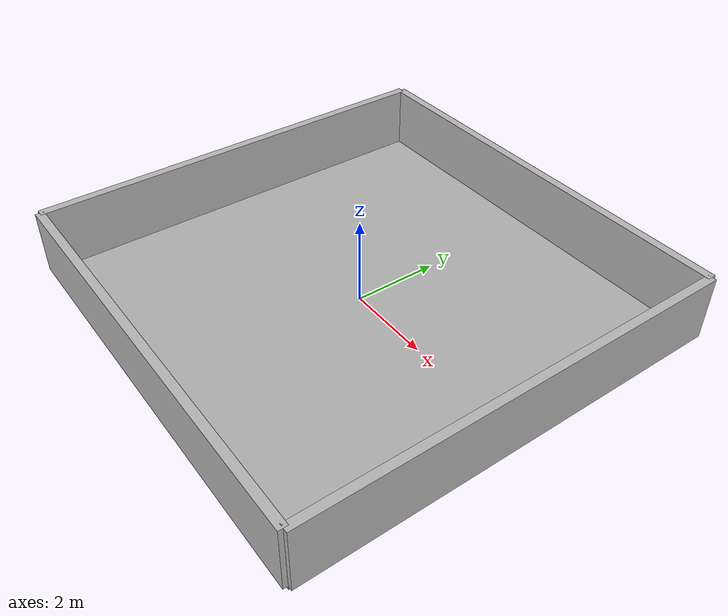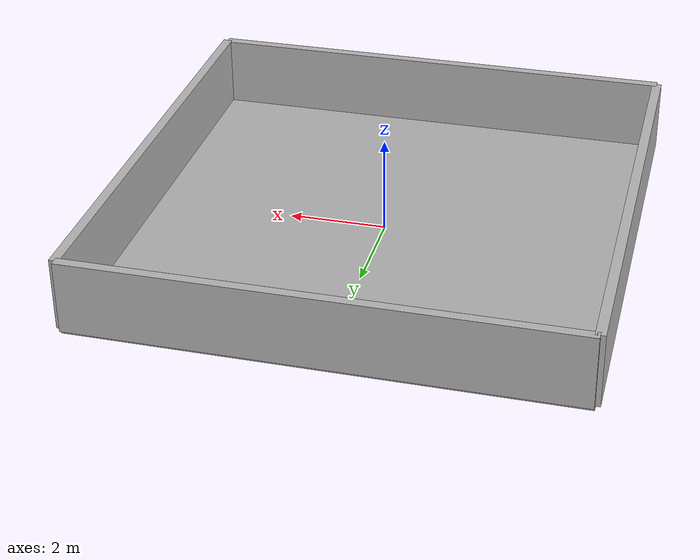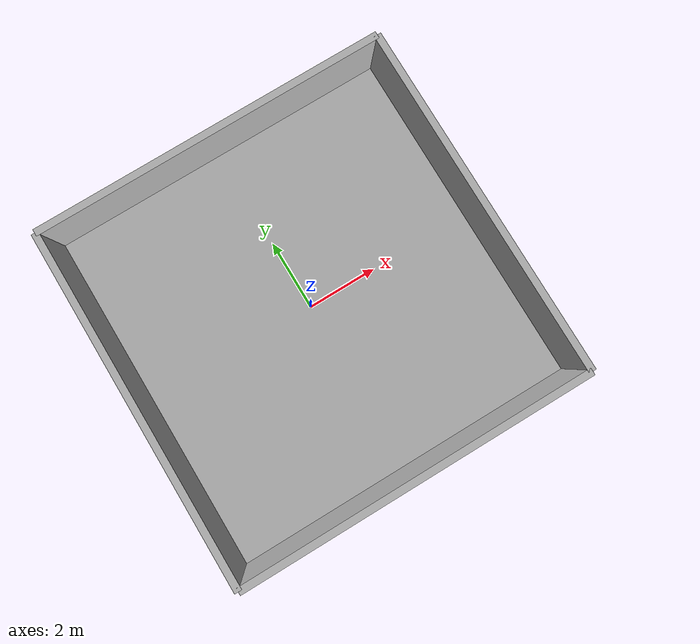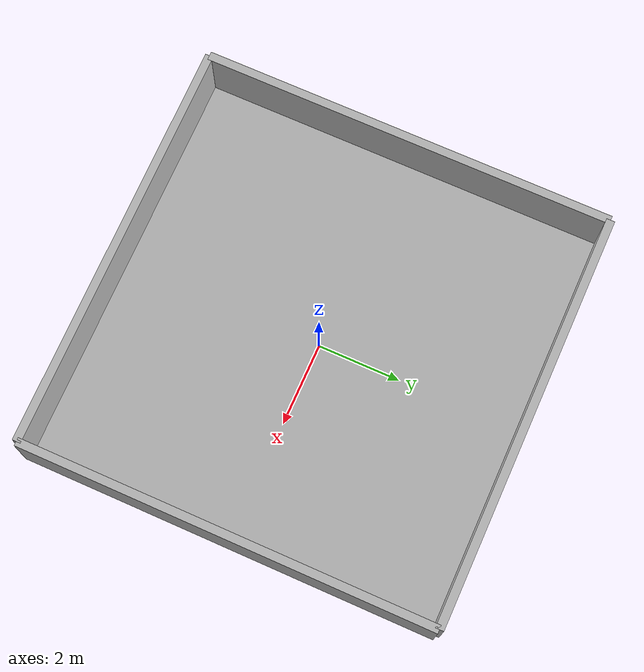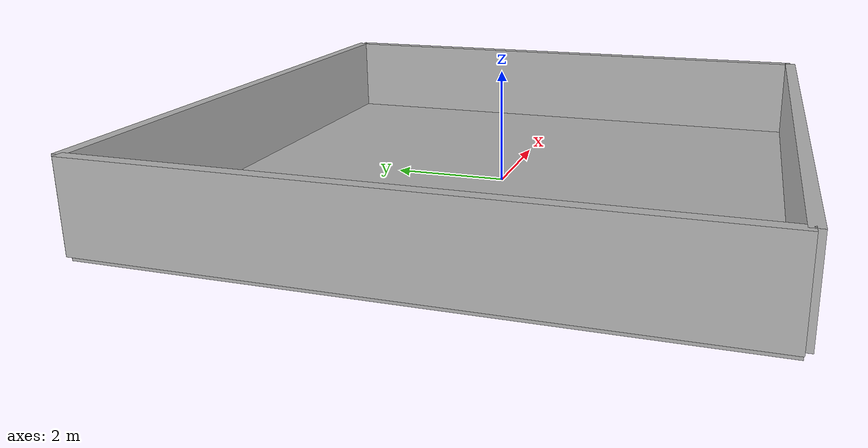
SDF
<?xml version="1.0" ?>
<sdf version="1.8">
  <world name="test_office">
    <physics type="ode">
      <real_time_update_rate>500</real_time_update_rate>
    </physics>
    <plugin filename="gz-sim-physics-system" name="gz::sim::systems::Physics"/>
    <plugin filename="gz-sim-user-commands-system" name="gz::sim::systems::UserCommands"/>
    <plugin filename="gz-sim-scene-broadcaster-system" name="gz::sim::systems::SceneBroadcaster"/>
    <plugin filename="gz-sim-sensors-system" name="gz::sim::systems::Sensors">
      <render_engine>ogre2</render_engine>
    </plugin>
    <scene>
      <ambient>0.4 0.4 0.4 1</ambient>
      <background>0.7 0.7 0.9 1</background>
    </scene>
    <light name="sun" type="directional">
      <pose>0 0 10 0 0 0</pose>
      <direction>-0.5 0.1 -0.9</direction>
      <diffuse>0.8 0.8 0.8 1</diffuse>
      <specular>0.2 0.2 0.2 1</specular>
    </light>
    <model name="ground_plane">
      <static>true</static>
      <pose>0 0 -0.05 0 0 0</pose>
      <link name="link">
        <collision name="collision">
          <geometry>
            <box><size>10 10 0.1</size></box>
          </geometry>
        </collision>
        <visual name="visual">
          <geometry>
            <box><size>10 10 0.1</size></box>
          </geometry>
          <material>
            <ambient>0.7 0.7 0.7 1</ambient>
            <diffuse>0.7 0.7 0.7 1</diffuse>
          </material>
        </visual>
      </link>
    </model>
    <model name="north_wall">
      <static>true</static>
      <pose>0 5 0.75 0 0 0</pose>
      <link name="link">
        <collision name="collision"><geometry><box><size>10 0.2 1.5</size></box></geometry></collision>
        <visual name="visual"><geometry><box><size>10 0.2 1.5</size></box></geometry></visual>
      </link>
    </model>
    <model name="south_wall">
      <static>true</static>
      <pose>0 -5 0.75 0 0 0</pose>
      <link name="link">
        <collision name="collision"><geometry><box><size>10 0.2 1.5</size></box></geometry></collision>
        <visual name="visual"><geometry><box><size>10 0.2 1.5</size></box></geometry></visual>
      </link>
    </model>
    <model name="east_wall">
      <static>true</static>
      <pose>5 0 0.75 0 0 0</pose>
      <link name="link">
        <collision name="collision"><geometry><box><size>0.2 10 1.5</size></box></geometry></collision>
        <visual name="visual"><geometry><box><size>0.2 10 1.5</size></box></geometry></visual>
      </link>
    </model>
    <model name="west_wall">
      <static>true</static>
      <pose>-5 0 0.75 0 0 0</pose>
      <link name="link">
        <collision name="collision"><geometry><box><size>0.2 10 1.5</size></box></geometry></collision>
        <visual name="visual"><geometry><box><size>0.2 10 1.5</size></box></geometry></visual>
      </link>
    </model>
  </world>
</sdf>
